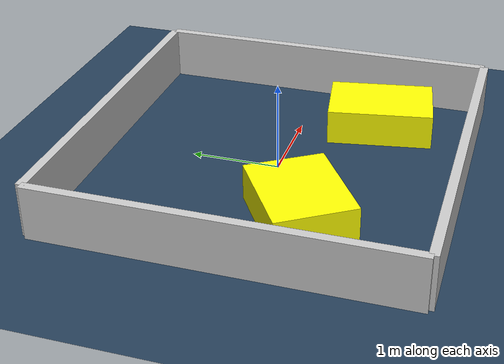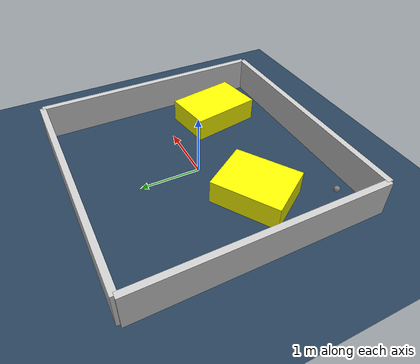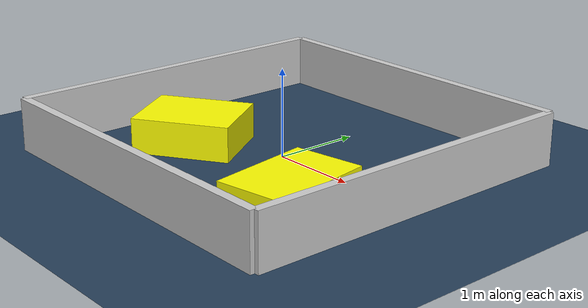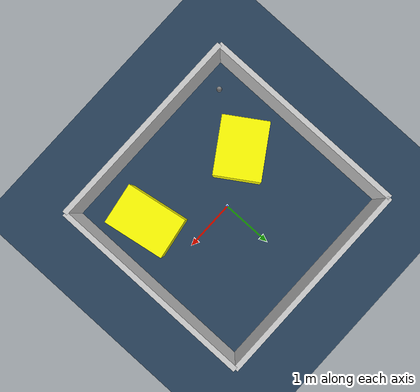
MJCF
<?xml version="1.0" ?>
<mujoco model="generated_environment">
  <option timestep="0.01" integrator="RK4" cone="elliptic"/>
  <default>
    <geom density="1"/>
  </default>
  <asset>
    <texture builtin="gradient" height="3072" rgb1="0.3 0.5 0.7" rgb2="0 0 0" type="skybox" width="512"/>
    <texture builtin="checker" height="300" mark="edge" markrgb="0.8 0.8 0.8" name="groundplane" rgb1="0.2 0.3 0.4" rgb2="0.1 0.2 0.3" type="2d" width="300"/>
    <material name="groundplane" reflectance="0.2" texrepeat="5 5" texture="groundplane" texuniform="true"/>
    <material name="robot" rgba="0.0 1.0 0.0 1"/>
  </asset>
  <worldbody>
    <light dir="0 0 -1" directional="true" pos="0 0 1.5"/>
    <geom condim="4" friction="1.0 0.005 0.001" material="groundplane" name="floor" size="0 0 0.05" type="plane"/>
    <body name="walls">
      <geom name="wall_1" condim="4" pos="-2.0 0.0 0.3" rgba="0.800000011920929 0.800000011920929 0.800000011920929 1.0" size="0.05 2.0 0.3" type="box"/>
      <geom name="wall_2" condim="4" pos="2.0 0.0 0.3" rgba="0.800000011920929 0.800000011920929 0.800000011920929 1.0" size="0.05 2.0 0.3" type="box"/>
      <geom name="wall_3" condim="4" pos="0.0 -2.0 0.3" rgba="0.800000011920929 0.800000011920929 0.800000011920929 1.0" size="2.0 0.05 0.3" type="box"/>
      <geom name="wall_4" condim="4" pos="0.0 2.0 0.3" rgba="0.800000011920929 0.800000011920929 0.800000011920929 1.0" size="2.0 0.05 0.3" type="box"/>
    </body>
    <body name="robot">
      <joint name="joint_x" type="slide" pos="0 0 0" axis="1 0 0"/>
      <joint name="joint_y" type="slide" pos="0 0 0" axis="0 1 0"/>
      <geom name="robot" type="sphere" pos="-1.5036934617911883 -1.5697958061045647 0.2" size="0.05" mass="5." friction="1.0 0.005 0.0001" condim="4"/>
      <site name="sensor_ball"/>
    </body>
    <body name="obstacle_1_movable">
      <geom name="obstacle_1_movable" condim="4" pos="1.1961568214038163 -0.909556184362763 0.2" euler="0 0 279.64504947482044" friction="1.0 0.005 0.001" rgba="1 1 0 1" size="0.5994177419441735 0.40572905494737166 0.2" type="box" mass="0.1"/>
      <joint type="free"/>
    </body>
    <body name="obstacle_2_movable">
      <geom name="obstacle_2_movable" condim="4" pos="-0.9369146939734003 -0.5077619853389516 0.2" euler="0 0 123.23018431444481" friction="1.0 0.005 0.001" rgba="1 1 0 1" size="0.44548515181842663 0.5586248229415407 0.2" type="box" mass="0.1"/>
      <joint type="free"/>
    </body>
  </worldbody>
  <actuator>
    <motor name="actuator_x" joint="joint_x" gear="1" ctrlrange="-1 1"/>
    <motor name="actuator_y" joint="joint_y" gear="1" ctrlrange="-1 1"/>
  </actuator>
</mujoco>
